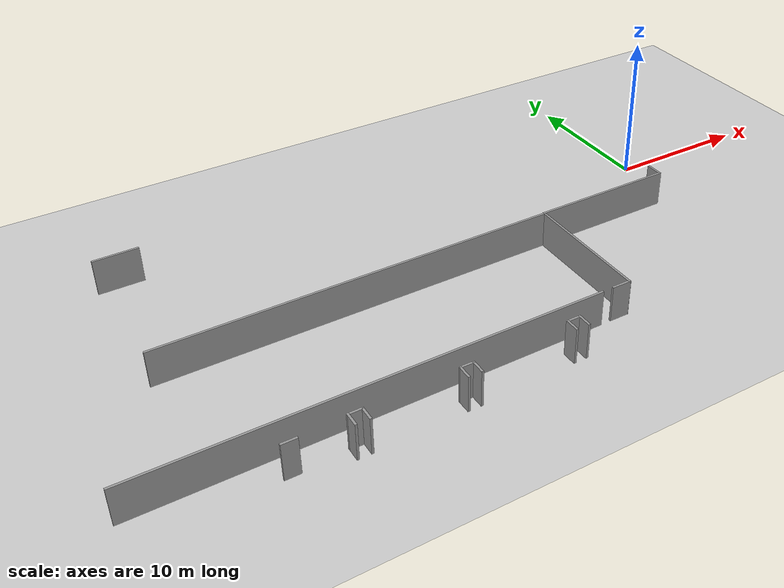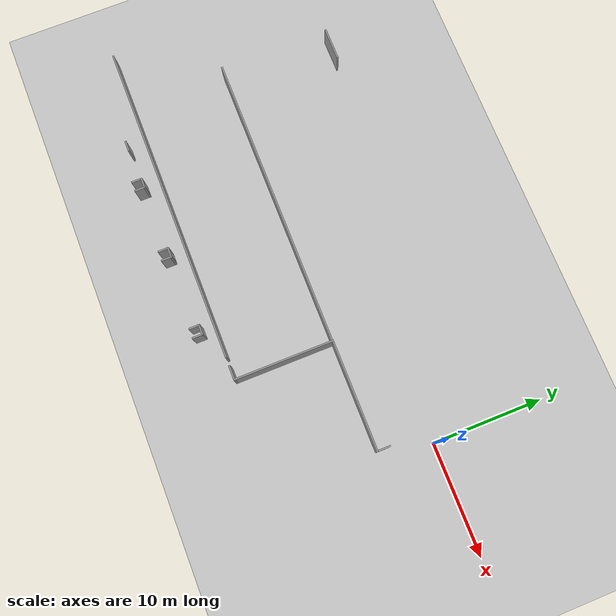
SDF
<sdf version="1.6">
 <world name="default">
  <model name="ground_plane">
   <static>1</static>
   <link name="link">
    <collision name="collision">
     <geometry><plane><normal>0 0 1</normal><size>300 300</size></plane></geometry>
     <surface>
      <contact><collide_bitmask>65535</collide_bitmask></contact>
      <friction><ode><mu>100</mu><mu2>50</mu2></ode></friction>
     </surface>
    </collision>
    <visual name="visual">
     <cast_shadows>0</cast_shadows>
     <geometry><plane><normal>0 0 1</normal><size>300 300</size></plane></geometry>
     <material>
      <script><uri>file://media/materials/scripts/gazebo.material</uri><name>Gazebo/Grey</name></script>
     </material>
    </visual>
   </link>
  </model>
  <model name="NIK">
   <pose>-0.005548 -3.7937 0 0 -0 0</pose>
   <link name="Wall_193">
    <collision name="Wall_193_Collision">
     <geometry><box><size>1 0.15 2.5</size></box></geometry>
     <pose>0 0 1.25 0 -0 0</pose>
    </collision>
    <visual name="Wall_193_Visual">
     <pose>0 0 1.25 0 -0 0</pose>
     <geometry><box><size>1 0.15 2.5</size></box></geometry>
     <material>
      <script><uri>file://media/materials/scripts/gazebo.material</uri><name>Gazebo/Grey</name></script>
      <ambient>1 1 1 1</ambient>
     </material>
     <meta><layer>0</layer></meta>
    </visual>
    <pose>-15.5545 -11.4442 0 0 -0 -1.5708</pose>
   </link>
   <link name="Wall_195">
    <collision name="Wall_195_Collision">
     <geometry><box><size>1 0.15 2.5</size></box></geometry>
     <pose>0 0 1.25 0 -0 0</pose>
    </collision>
    <visual name="Wall_195_Visual">
     <pose>0 0 1.25 0 -0 0</pose>
     <geometry><box><size>1 0.15 2.5</size></box></geometry>
     <material>
      <script><uri>file://media/materials/scripts/gazebo.material</uri><name>Gazebo/Grey</name></script>
      <ambient>1 1 1 1</ambient>
     </material>
     <meta><layer>0</layer></meta>
    </visual>
    <pose>-16.4045 -11.4442 0 0 -0 1.5708</pose>
   </link>
   <link name="Wall_196">
    <collision name="Wall_196_Collision">
     <geometry><box><size>1 0.15 2.5</size></box></geometry>
     <pose>0 0 1.25 0 -0 0</pose>
    </collision>
    <visual name="Wall_196_Visual">
     <pose>0 0 1.25 0 -0 0</pose>
     <geometry><box><size>1 0.15 2.5</size></box></geometry>
     <material>
      <script><uri>file://media/materials/scripts/gazebo.material</uri><name>Gazebo/Grey</name></script>
      <ambient>1 1 1 1</ambient>
     </material>
     <meta><layer>0</layer></meta>
    </visual>
    <pose>-15.9795 -11.0192 0 0 -0 0</pose>
   </link>
   <link name="Wall_203">
    <collision name="Wall_203_Collision">
     <geometry><box><size>1 0.15 2.5</size></box></geometry>
     <pose>0 0 1.25 0 -0 0</pose>
    </collision>
    <visual name="Wall_203_Visual">
     <pose>0 0 1.25 0 -0 0</pose>
     <geometry><box><size>1 0.15 2.5</size></box></geometry>
     <material>
      <script><uri>file://media/materials/scripts/gazebo.material</uri><name>Gazebo/Grey</name></script>
      <ambient>1 1 1 1</ambient>
     </material>
     <meta><layer>0</layer></meta>
    </visual>
    <pose>-23.7431 -11.6431 0 0 -0 -1.5708</pose>
   </link>
   <link name="Wall_205">
    <collision name="Wall_205_Collision">
     <geometry><box><size>1 0.15 2.5</size></box></geometry>
     <pose>0 0 1.25 0 -0 0</pose>
    </collision>
    <visual name="Wall_205_Visual">
     <pose>0 0 1.25 0 -0 0</pose>
     <geometry><box><size>1 0.15 2.5</size></box></geometry>
     <material>
      <script><uri>file://media/materials/scripts/gazebo.material</uri><name>Gazebo/Grey</name></script>
      <ambient>1 1 1 1</ambient>
     </material>
     <meta><layer>0</layer></meta>
    </visual>
    <pose>-22.8931 -11.6431 0 0 -0 1.5708</pose>
   </link>
   <link name="Wall_206">
    <collision name="Wall_206_Collision">
     <geometry><box><size>1 0.15 2.5</size></box></geometry>
     <pose>0 0 1.25 0 -0 0</pose>
    </collision>
    <visual name="Wall_206_Visual">
     <pose>0 0 1.25 0 -0 0</pose>
     <geometry><box><size>1 0.15 2.5</size></box></geometry>
     <material>
      <script><uri>file://media/materials/scripts/gazebo.material</uri><name>Gazebo/Grey</name></script>
      <ambient>1 1 1 1</ambient>
     </material>
     <meta><layer>0</layer></meta>
    </visual>
    <pose>-23.3181 -11.2181 0 0 -0 3.14159</pose>
   </link>
   <link name="Wall_218">
    <collision name="Wall_218_Collision">
     <geometry><box><size>1 0.15 2.5</size></box></geometry>
     <pose>0 0 1.25 0 -0 0</pose>
    </collision>
    <visual name="Wall_218_Visual">
     <pose>0 0 1.25 0 -0 0</pose>
     <geometry><box><size>1 0.15 2.5</size></box></geometry>
     <material>
      <script><uri>file://media/materials/scripts/gazebo.material</uri><name>Gazebo/Grey</name></script>
      <ambient>1 1 1 1</ambient>
     </material>
     <meta><layer>0</layer></meta>
    </visual>
    <pose>-30.558 -11.7154 0 0 -0 -1.5708</pose>
   </link>
   <link name="Wall_220">
    <collision name="Wall_220_Collision">
     <geometry><box><size>1 0.15 2.5</size></box></geometry>
     <pose>0 0 1.25 0 -0 0</pose>
    </collision>
    <visual name="Wall_220_Visual">
     <pose>0 0 1.25 0 -0 0</pose>
     <geometry><box><size>1 0.15 2.5</size></box></geometry>
     <material>
      <script><uri>file://media/materials/scripts/gazebo.material</uri><name>Gazebo/Grey</name></script>
      <ambient>1 1 1 1</ambient>
     </material>
     <meta><layer>0</layer></meta>
    </visual>
    <pose>-29.708 -11.7154 0 0 -0 1.5708</pose>
   </link>
   <link name="Wall_221">
    <collision name="Wall_221_Collision">
     <geometry><box><size>1 0.15 2.5</size></box></geometry>
     <pose>0 0 1.25 0 -0 0</pose>
    </collision>
    <visual name="Wall_221_Visual">
     <pose>0 0 1.25 0 -0 0</pose>
     <geometry><box><size>1 0.15 2.5</size></box></geometry>
     <material>
      <script><uri>file://media/materials/scripts/gazebo.material</uri><name>Gazebo/Grey</name></script>
      <ambient>1 1 1 1</ambient>
     </material>
     <meta><layer>0</layer></meta>
    </visual>
    <pose>-30.133 -11.2904 0 0 -0 3.14159</pose>
   </link>
   <link name="Wall_232">
    <collision name="Wall_232_Collision">
     <geometry><box><size>1 0.15 2.5</size></box></geometry>
     <pose>0 0 1.25 0 -0 0</pose>
    </collision>
    <visual name="Wall_232_Visual">
     <pose>0 0 1.25 0 -0 0</pose>
     <geometry><box><size>1 0.15 2.5</size></box></geometry>
     <material>
      <script><uri>file://media/materials/scripts/gazebo.material</uri><name>Gazebo/Grey</name></script>
      <ambient>1 1 1 1</ambient>
     </material>
     <meta><layer>0</layer></meta>
    </visual>
    <pose>-33.929 -11.4711 0 0 -0 3.14159</pose>
   </link>
   <link name="Wall_551">
    <collision name="Wall_551_Collision">
     <geometry><box><size>27 0.15 2.5</size></box></geometry>
     <pose>0 0 1.25 0 -0 0</pose>
    </collision>
    <visual name="Wall_551_Visual">
     <pose>0 0 1.25 0 -0 0</pose>
     <geometry><box><size>27 0.15 2.5</size></box></geometry>
     <material>
      <script><uri>file://media/materials/scripts/gazebo.material</uri><name>Gazebo/Grey</name></script>
      <ambient>1 1 1 1</ambient>
     </material>
     <meta><layer>0</layer></meta>
    </visual>
    <pose>-24.4535 -1.04437 0 0 -0 0</pose>
   </link>
   <link name="Wall_565">
    <collision name="Wall_565_Collision">
     <geometry><box><size>1.25 0.15 2.5</size></box></geometry>
     <pose>0 0 1.25 0 -0 0</pose>
    </collision>
    <visual name="Wall_565_Visual">
     <pose>0 0 1.25 0 -0 0</pose>
     <geometry><box><size>1.25 0.15 2.5</size></box></geometry>
     <material>
      <script><uri>file://media/materials/scripts/gazebo.material</uri><name>Gazebo/Grey</name></script>
      <ambient>1 1 1 1</ambient>
     </material>
     <meta><layer>0</layer></meta>
    </visual>
    <pose>-1.11945 -0.443303 0 0 -0 1.5708</pose>
   </link>
   <link name="Wall_590">
    <collision name="Wall_590_Collision">
     <geometry><box><size>29.75 0.15 2.5</size></box></geometry>
     <pose>0 0 1.25 0 -0 0</pose>
    </collision>
    <visual name="Wall_590_Visual">
     <pose>0 0 1.25 0 -0 0</pose>
     <geometry><box><size>29.75 0.15 2.5</size></box></geometry>
     <material>
      <script><uri>file://media/materials/scripts/gazebo.material</uri><name>Gazebo/Grey</name></script>
      <ambient>1 1 1 1</ambient>
     </material>
     <meta><layer>0</layer></meta>
    </visual>
    <pose>-27.8198 -9.84354 0 0 -0 0</pose>
   </link>
   <link name="Wall_592">
    <collision name="Wall_592_Collision">
     <geometry><box><size>1.35 0.15 2.5</size></box></geometry>
     <pose>0 0 1.25 0 -0 0</pose>
    </collision>
    <visual name="Wall_592_Visual">
     <pose>0 0 1.25 0 -0 0</pose>
     <geometry><box><size>1.35 0.15 2.5</size></box></geometry>
     <material>
      <script><uri>file://media/materials/scripts/gazebo.material</uri><name>Gazebo/Grey</name></script>
      <ambient>1 1 1 1</ambient>
     </material>
     <meta><layer>0</layer></meta>
    </visual>
    <pose>-11.5698 -9.84354 0 0 -0 0</pose>
   </link>
   <link name="Wall_79">
    <collision name="Wall_79_Collision">
     <geometry><box><size>10 0.15 2.5</size></box></geometry>
     <pose>0 0 1.25 0 -0 0</pose>
    </collision>
    <visual name="Wall_79_Visual">
     <pose>0 0 1.25 0 -0 0</pose>
     <geometry><box><size>10 0.15 2.5</size></box></geometry>
     <material>
      <script><uri>file://media/materials/scripts/gazebo.material</uri><name>Gazebo/Grey</name></script>
      <ambient>1 1 1 1</ambient>
     </material>
     <meta><layer>0</layer></meta>
    </visual>
    <pose>-6.04461 -0.99342 0 0 -0 -3.14157</pose>
   </link>
   <link name="Wall_80">
    <collision name="Wall_80_Collision">
     <geometry><box><size>9 0.15 2.5</size></box></geometry>
     <pose>0 0 1.25 0 -0 0</pose>
    </collision>
    <visual name="Wall_80_Visual">
     <pose>0 0 1.25 0 -0 0</pose>
     <geometry><box><size>9 0.15 2.5</size></box></geometry>
     <material>
      <script><uri>file://media/materials/scripts/gazebo.material</uri><name>Gazebo/Grey</name></script>
      <ambient>1 1 1 1</ambient>
     </material>
     <meta><layer>0</layer></meta>
    </visual>
    <pose>-10.9698 -5.41854 0 0 -0 -1.5708</pose>
   </link>
   <link name="Wall_95">
    <collision name="Wall_95_Collision">
     <geometry><box><size>3 0.15 2.5</size></box></geometry>
     <pose>0 0 1.25 0 -0 0</pose>
    </collision>
    <visual name="Wall_95_Visual">
     <pose>0 0 1.25 0 -0 0</pose>
     <geometry><box><size>3 0.15 2.5</size></box></geometry>
     <material>
      <script><uri>file://media/materials/scripts/gazebo.material</uri><name>Gazebo/Grey</name></script>
      <ambient>1 1 1 1</ambient>
     </material>
     <meta><layer>0</layer></meta>
    </visual>
    <pose>-36.4535 9.05563 0 0 -0 3.14159</pose>
   </link>
   <static>1</static>
  </model>
 </world>
</sdf>
